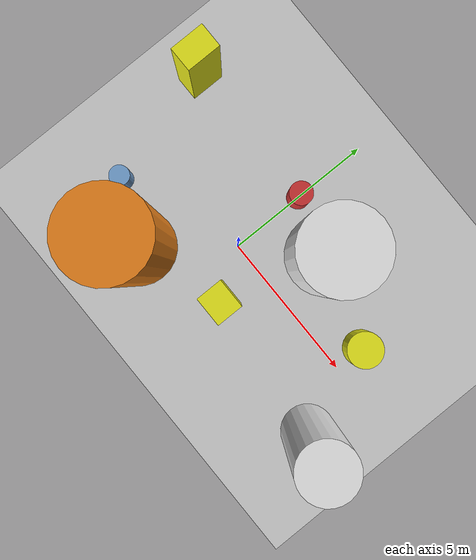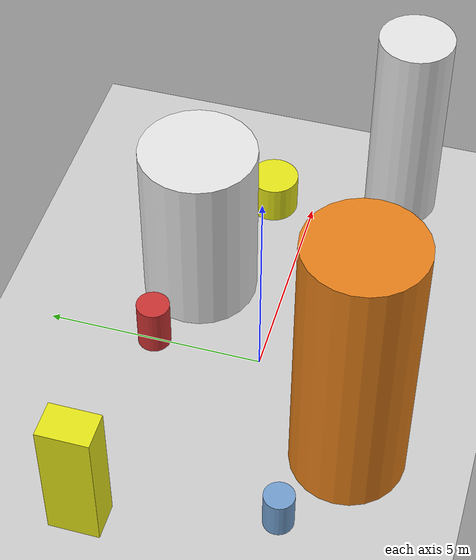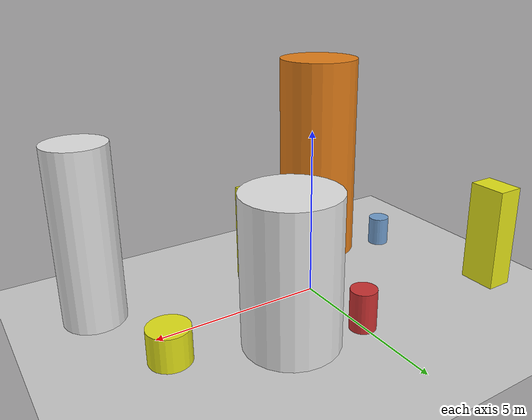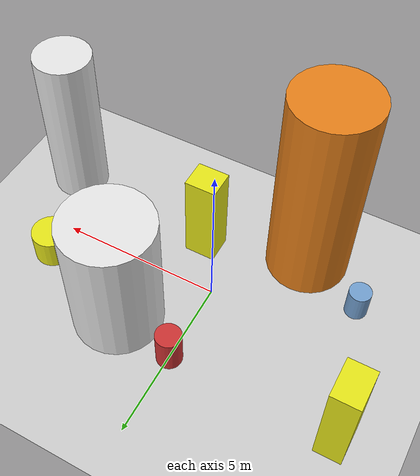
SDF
<?xml version='1.0'?>
<sdf version='1.6'>
  <world name='routeA_rl_v1__support_expansion__rl_train__mixed_3d_low_density_route__000137'>
    <!-- Sun light -->
    <light name='sun' type='directional'>
      <cast_shadows>1</cast_shadows>
      <pose>0 0 10 0 0 0</pose>
      <diffuse>0.8 0.8 0.8 1</diffuse>
      <specular>0.2 0.2 0.2 1</specular>
      <attenuation>
        <range>1000</range>
        <constant>0.9</constant>
        <linear>0.01</linear>
        <quadratic>0.001</quadratic>
      </attenuation>
      <direction>-0.5 0.1 -0.9</direction>
    </light>

    <!-- Ground plane -->
    <model name='ground_plane'>
      <static>1</static>
      <link name='link'>
        <collision name='collision'>
          <geometry>
            <plane>
              <normal>0 0 1</normal>
              <size>100 100</size>
            </plane>
          </geometry>
          <surface>
            <contact>
              <collide_bitmask>65535</collide_bitmask>
              <ode/>
            </contact>
            <friction>
              <ode>
                <mu>100</mu>
                <mu2>50</mu2>
              </ode>
              <torsional><ode/></torsional>
            </friction>
            <bounce/>
          </surface>
          <max_contacts>10</max_contacts>
        </collision>
        <visual name='visual'>
          <cast_shadows>0</cast_shadows>
          <geometry>
            <plane>
              <normal>0 0 1</normal>
              <size>100 100</size>
            </plane>
          </geometry>
          <material>
            <script>
              <uri>file://media/materials/scripts/gazebo.material</uri>
              <n>Gazebo/Grey</n>
            </script>
          </material>
        </visual>
      </link>
    </model>

    <!-- Environment -->
    <magnetic_field>6e-06 2.3e-05 -4.2e-05</magnetic_field>
    <atmosphere type='adiabatic'/>
    <physics name='default_physics' default='0' type='ode'>
      <gravity>0 0 -9.8</gravity>
      <max_step_size>0.004</max_step_size>
      <real_time_factor>1</real_time_factor>
      <real_time_update_rate>250</real_time_update_rate>
    </physics>
    <scene>
      <ambient>0.4 0.4 0.4 1</ambient>
      <background>0.7 0.7 0.7 1</background>
      <shadows>1</shadows>
    </scene>
    <wind/>
    <spherical_coordinates>
      <surface_model>EARTH_WGS84</surface_model>
      <latitude_deg>0</latitude_deg>
      <longitude_deg>0</longitude_deg>
      <elevation>0</elevation>
      <heading_deg>0</heading_deg>
    </spherical_coordinates>

    <!-- ============ OBSTACLES (8) ============ -->
    <model name='low_obs_0'>
      <static>1</static>
      <link name='link'>
        <visual name='visual'>
          <geometry>
            <cylinder>
              <radius>0.3359</radius>
              <length>0.9431</length>
            </cylinder>
          </geometry>
          <material>
            <script>
              <n>Gazebo/Blue</n>
              <uri>file://media/materials/scripts/gazebo.material</uri>
            </script>
            <ambient>0.447 0.624 0.812 1</ambient>
          </material>
        </visual>
        <collision name='collision'>
          <geometry>
            <cylinder>
              <radius>0.3359</radius>
              <length>0.9431</length>
            </cylinder>
          </geometry>
          <max_contacts>10</max_contacts>
          <surface>
            <contact><ode/></contact>
            <bounce/>
            <friction>
              <ode><mu>1</mu><mu2>1</mu2></ode>
              <torsional><ode/></torsional>
            </friction>
          </surface>
        </collision>
      </link>
      <pose>-4.0000 -1.5000 0.4716 0 0 0.0000</pose>
    </model>

    <model name='low_obs_1'>
      <static>1</static>
      <link name='link'>
        <visual name='visual'>
          <geometry>
            <cylinder>
              <radius>0.3833</radius>
              <length>1.1850</length>
            </cylinder>
          </geometry>
          <material>
            <script>
              <n>Gazebo/Red</n>
              <uri>file://media/materials/scripts/gazebo.material</uri>
            </script>
            <ambient>0.8 0.2 0.2 1</ambient>
          </material>
        </visual>
        <collision name='collision'>
          <geometry>
            <cylinder>
              <radius>0.3833</radius>
              <length>1.1850</length>
            </cylinder>
          </geometry>
          <max_contacts>10</max_contacts>
          <surface>
            <contact><ode/></contact>
            <bounce/>
            <friction>
              <ode><mu>1</mu><mu2>1</mu2></ode>
              <torsional><ode/></torsional>
            </friction>
          </surface>
        </collision>
      </link>
      <pose>0.0000 2.5000 0.5925 0 0 0.0000</pose>
    </model>

    <model name='low_obs_2'>
      <static>1</static>
      <link name='link'>
        <visual name='visual'>
          <geometry>
            <cylinder>
              <radius>0.5842</radius>
              <length>0.9720</length>
            </cylinder>
          </geometry>
          <material>
            <script>
              <n>Gazebo/Yellow</n>
              <uri>file://media/materials/scripts/gazebo.material</uri>
            </script>
            <ambient>0.9 0.9 0.1 1</ambient>
          </material>
        </visual>
        <collision name='collision'>
          <geometry>
            <cylinder>
              <radius>0.5842</radius>
              <length>0.9720</length>
            </cylinder>
          </geometry>
          <max_contacts>10</max_contacts>
          <surface>
            <contact><ode/></contact>
            <bounce/>
            <friction>
              <ode><mu>1</mu><mu2>1</mu2></ode>
              <torsional><ode/></torsional>
            </friction>
          </surface>
        </collision>
      </link>
      <pose>5.0000 1.0000 0.4860 0 0 0.0000</pose>
    </model>

    <model name='tall_obs_0'>
      <static>1</static>
      <link name='link'>
        <visual name='visual'>
          <geometry>
            <cylinder>
              <radius>1.2634</radius>
              <length>6.5693</length>
            </cylinder>
          </geometry>
          <material>
            <script>
              <n>Gazebo/Orange</n>
              <uri>file://media/materials/scripts/gazebo.material</uri>
            </script>
            <ambient>0.9 0.5 0.1 1</ambient>
          </material>
        </visual>
        <collision name='collision'>
          <geometry>
            <cylinder>
              <radius>1.2634</radius>
              <length>6.5693</length>
            </cylinder>
          </geometry>
          <max_contacts>10</max_contacts>
          <surface>
            <contact><ode/></contact>
            <bounce/>
            <friction>
              <ode><mu>1</mu><mu2>1</mu2></ode>
              <torsional><ode/></torsional>
            </friction>
          </surface>
        </collision>
      </link>
      <pose>-2.0000 -2.5000 3.2846 0 0 0.0000</pose>
    </model>

    <model name='tall_obs_1'>
      <static>1</static>
      <link name='link'>
        <visual name='visual'>
          <geometry>
            <cylinder>
              <radius>1.3406</radius>
              <length>4.2332</length>
            </cylinder>
          </geometry>
          <material>
            <script>
              <n>Gazebo/White</n>
              <uri>file://media/materials/scripts/gazebo.material</uri>
            </script>
            <ambient>0.9 0.9 0.9 1</ambient>
          </material>
        </visual>
        <collision name='collision'>
          <geometry>
            <cylinder>
              <radius>1.3406</radius>
              <length>4.2332</length>
            </cylinder>
          </geometry>
          <max_contacts>10</max_contacts>
          <surface>
            <contact><ode/></contact>
            <bounce/>
            <friction>
              <ode><mu>1</mu><mu2>1</mu2></ode>
              <torsional><ode/></torsional>
            </friction>
          </surface>
        </collision>
      </link>
      <pose>2.0000 2.0000 2.1166 0 0 0.0000</pose>
    </model>

    <model name='tall_obs_2'>
      <static>1</static>
      <link name='link'>
        <visual name='visual'>
          <geometry>
            <cylinder>
              <radius>0.8778</radius>
              <length>5.1278</length>
            </cylinder>
          </geometry>
          <material>
            <script>
              <n>Gazebo/White</n>
              <uri>file://media/materials/scripts/gazebo.material</uri>
            </script>
            <ambient>0.9 0.9 0.9 1</ambient>
          </material>
        </visual>
        <collision name='collision'>
          <geometry>
            <cylinder>
              <radius>0.8778</radius>
              <length>5.1278</length>
            </cylinder>
          </geometry>
          <max_contacts>10</max_contacts>
          <surface>
            <contact><ode/></contact>
            <bounce/>
            <friction>
              <ode><mu>1</mu><mu2>1</mu2></ode>
              <torsional><ode/></torsional>
            </friction>
          </surface>
        </collision>
      </link>
      <pose>6.0000 -2.0000 2.5639 0 0 0.0000</pose>
    </model>

    <model name='med_obs_0'>
      <static>1</static>
      <link name='link'>
        <visual name='visual'>
          <geometry>
            <box>
              <size>0.8026 1.1324 3.1498</size>
            </box>
          </geometry>
          <material>
            <script>
              <n>Gazebo/Yellow</n>
              <uri>file://media/materials/scripts/gazebo.material</uri>
            </script>
            <ambient>0.9 0.9 0.1 1</ambient>
          </material>
        </visual>
        <collision name='collision'>
          <geometry>
            <box>
              <size>0.8026 1.1324 3.1498</size>
            </box>
          </geometry>
          <max_contacts>10</max_contacts>
          <surface>
            <contact><ode/></contact>
            <bounce/>
            <friction>
              <ode><mu>1</mu><mu2>1</mu2></ode>
              <torsional><ode/></torsional>
            </friction>
          </surface>
        </collision>
      </link>
      <pose>-5.0000 2.5000 1.5749 0 0 0.0000</pose>
    </model>

    <model name='med_obs_1'>
      <static>1</static>
      <link name='link'>
        <visual name='visual'>
          <geometry>
            <box>
              <size>0.9553 0.8571 3.0373</size>
            </box>
          </geometry>
          <material>
            <script>
              <n>Gazebo/Yellow</n>
              <uri>file://media/materials/scripts/gazebo.material</uri>
            </script>
            <ambient>0.9 0.9 0.1 1</ambient>
          </material>
        </visual>
        <collision name='collision'>
          <geometry>
            <box>
              <size>0.9553 0.8571 3.0373</size>
            </box>
          </geometry>
          <max_contacts>10</max_contacts>
          <surface>
            <contact><ode/></contact>
            <bounce/>
            <friction>
              <ode><mu>1</mu><mu2>1</mu2></ode>
              <torsional><ode/></torsional>
            </friction>
          </surface>
        </collision>
      </link>
      <pose>1.0000 -1.5000 1.5186 0 0 0.0000</pose>
    </model>

    <!-- GUI camera -->
    <gui fullscreen='0'>
      <camera name='user_camera'>
        <pose>-15 0 18 0 0.85 0.15</pose>
        <view_controller>orbit</view_controller>
        <projection_type>perspective</projection_type>
      </camera>
    </gui>
  </world>
</sdf>
